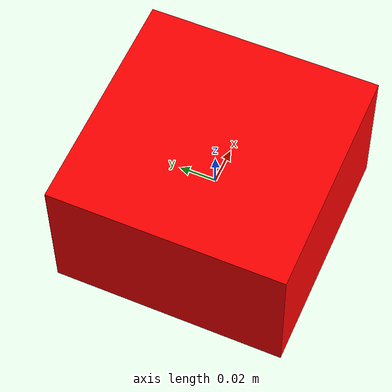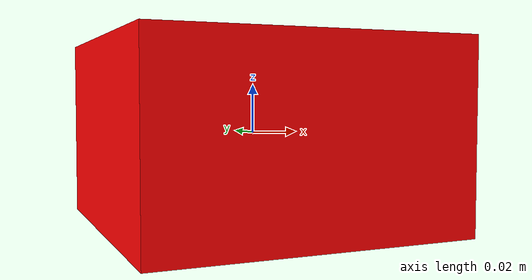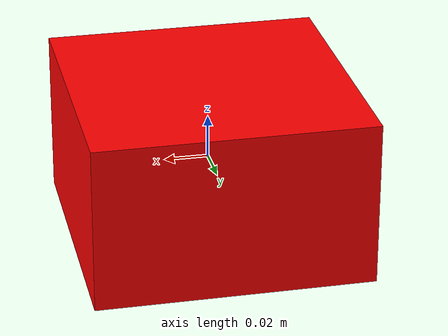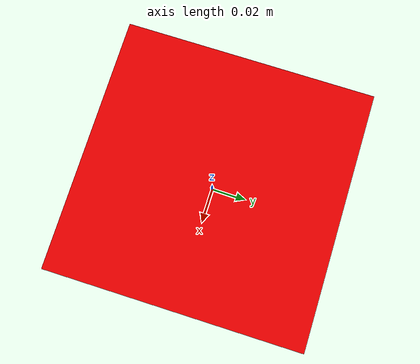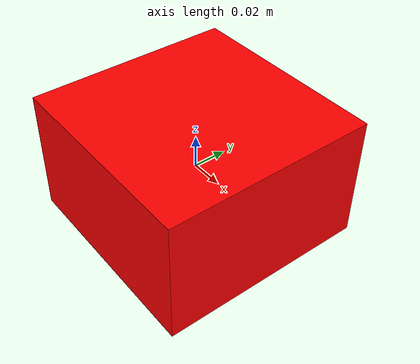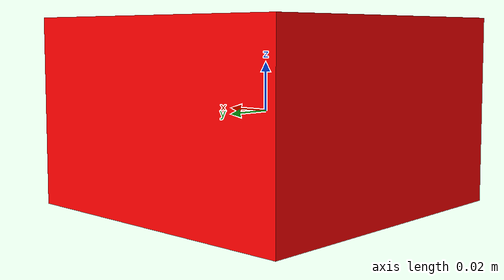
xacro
<robot name="vicon_block" xmlns:xacro="http://www.ros.org/wiki/xacro">
  <link name="block_link">
    <visual>
      <geometry>
        <box size="0.127 0.127 0.0762"/>
      </geometry>
      <material name="custom_red">
        <color rgba="1 0 0 1"/>
      </material>
    </visual>
    <collision>
      <geometry>
        <box size="0.28 0.28 0.17"/>
      </geometry>
    </collision>
    <inertial>
      <mass value="0.1"/>
      <origin xyz="0 0 0" />
      <inertia ixx="0.001" ixy="0.0" ixz="0.0"
               iyy="0.001" iyz="0.0"
               izz="0.001"/>
    </inertial>
  </link>
  <!-- This sets color in Gazebo -->
  <gazebo reference="block_link">
    <material>Gazebo/Red</material>
  </gazebo>
</robot>
